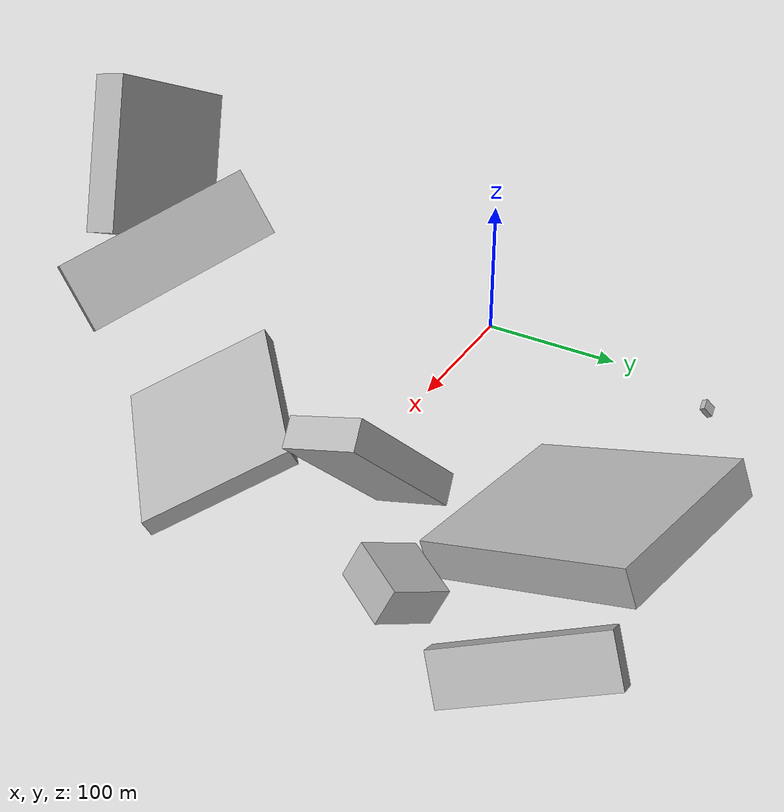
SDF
<sdf version="1.6">
 <world name="default">
  <scene>
   <sky><clouds><speed>12</speed></clouds></sky>
   <ambient>0.4 0.4 0.4 1</ambient>
   <background>0.7 0.7 0.7 1</background>
   <shadows>1</shadows>
  </scene>
  <gravity>0 0 -9.8066</gravity>
  <magnetic_field>6e-06 2.3e-05 -4.2e-05</magnetic_field>
  <physics default="0" name="default_physics" type="ode">
   <ode>
    <solver>
     <type>quick</type>
     <iters>10</iters>
     <sor>1.0</sor>
     <use_dynamic_moi_rescaling>0</use_dynamic_moi_rescaling>
    </solver>
    <constraints>
     <cfm>0</cfm>
     <erp>0.2</erp>
     <contact_max_correcting_vel>100</contact_max_correcting_vel>
     <contact_surface_layer>0.001</contact_surface_layer>
    </constraints>
   </ode>
   <max_step_size>0.004</max_step_size>
   <real_time_factor>1</real_time_factor>
   <real_time_update_rate>250</real_time_update_rate>
  </physics>
  <light name="sun" type="directional">
   <pose>0 0 10 0 0 0</pose>
   <diffuse>0.8 0.8 0.8 1</diffuse>
   <specular>0.2 0.2 0.2 1</specular>
   <attenuation>
    <range>1000</range>
    <constant>0.9</constant>
    <linear>0.01</linear>
    <quadratic>0.001</quadratic>
   </attenuation>
   <direction>-0.5 0.1 -0.9</direction>
  </light>
  <model name="building_1">
   <static>0</static>
   <pose>307.0887394121239 -92.90789112015689 38.46091955518243 -0.17278648651513703 -1.1090864195902992 -0.7198513061389946</pose>
   <link name="link">
    <gravity>0</gravity>
    <pose>0 0 49.5 0 0 0</pose>
    <collision name="collision"><geometry><box><size>12 121 99</size></box></geometry></collision>
    <visual name="visual">
     <cast_shadows>0</cast_shadows>
     <geometry><box><size>12 121 99</size></box></geometry>
     <material>
      <script>
       <uri>model://HANNAS_wall/materials/scripts</uri>
       <uri>model://HANNAS_wall/materials/textures</uri>
       <name>vrc/HANNAS_wall</name>
      </script>
     </material>
    </visual>
   </link>
  </model>
  <model name="building_2">
   <static>0</static>
   <pose>345.55512464683557 121.42695621760659 127.4727559472598 -0.415572883404514 -0.6667721000824675 -2.9171289070438142</pose>
   <link name="link">
    <gravity>0</gravity>
    <pose>0 0 42.0 0 0 0</pose>
    <collision name="collision"><geometry><box><size>17 44 84</size></box></geometry></collision>
    <visual name="visual">
     <cast_shadows>0</cast_shadows>
     <geometry><box><size>17 44 84</size></box></geometry>
     <material>
      <script>
       <uri>model://HANNAS_wall/materials/scripts</uri>
       <uri>model://HANNAS_wall/materials/textures</uri>
       <name>vrc/HANNAS_wall</name>
      </script>
     </material>
    </visual>
   </link>
  </model>
  <model name="building_3">
   <static>0</static>
   <pose>221.80159101425306 165.71560828996144 51.087339528584394 3.1404588150217183 -0.3774386534399989 1.3906096923755462</pose>
   <link name="link">
    <gravity>0</gravity>
    <pose>0 0 12.5 0 0 0</pose>
    <collision name="collision"><geometry><box><size>150 127 25</size></box></geometry></collision>
    <visual name="visual">
     <cast_shadows>0</cast_shadows>
     <geometry><box><size>150 127 25</size></box></geometry>
     <material>
      <script>
       <uri>model://HANNAS_wall/materials/scripts</uri>
       <uri>model://HANNAS_wall/materials/textures</uri>
       <name>vrc/HANNAS_wall</name>
      </script>
     </material>
    </visual>
   </link>
  </model>
  <model name="building_4">
   <static>0</static>
   <pose>58.860300481461096 187.615456356296 24.809881657060078 0.9311207596241351 -0.3162225196769521 -3.0055810395846083</pose>
   <link name="link">
    <gravity>0</gravity>
    <pose>0 0 2.0 0 0 0</pose>
    <collision name="collision"><geometry><box><size>8 9 4</size></box></geometry></collision>
    <visual name="visual">
     <cast_shadows>0</cast_shadows>
     <geometry><box><size>8 9 4</size></box></geometry>
     <material>
      <script>
       <uri>model://HANNAS_wall/materials/scripts</uri>
       <uri>model://HANNAS_wall/materials/textures</uri>
       <name>vrc/HANNAS_wall</name>
      </script>
     </material>
    </visual>
   </link>
  </model>
  <model name="building_5">
   <static>0</static>
   <pose>355.08752267077375 189.5596365969928 62.08516144228548 2.751178103934073 0.47323309771655675 -3.038318375155155</pose>
   <link name="link">
    <gravity>0</gravity>
    <pose>0 0 16.0 0 0 0</pose>
    <collision name="collision"><geometry><box><size>14 103 32</size></box></geometry></collision>
    <visual name="visual">
     <cast_shadows>0</cast_shadows>
     <geometry><box><size>14 103 32</size></box></geometry>
     <material>
      <script>
       <uri>model://HANNAS_wall/materials/scripts</uri>
       <uri>model://HANNAS_wall/materials/textures</uri>
       <name>vrc/HANNAS_wall</name>
      </script>
     </material>
    </visual>
   </link>
  </model>
  <model name="building_6">
   <static>0</static>
   <pose>321.8158096881894 114.84121911603677 41.23189323887782 1.1278008151010008 0.15228248810991327 1.0056011837043037</pose>
   <link name="link">
    <gravity>0</gravity>
    <pose>0 0 20.0 0 0 0</pose>
    <collision name="collision"><geometry><box><size>39 24 40</size></box></geometry></collision>
    <visual name="visual">
     <cast_shadows>0</cast_shadows>
     <geometry><box><size>39 24 40</size></box></geometry>
     <material>
      <script>
       <uri>model://HANNAS_wall/materials/scripts</uri>
       <uri>model://HANNAS_wall/materials/textures</uri>
       <name>vrc/HANNAS_wall</name>
      </script>
     </material>
    </visual>
   </link>
  </model>
  <model name="building_7">
   <static>0</static>
   <pose>247.53693327837215 -99.36671740627776 8.381229631016252 1.5904130978373863 1.0994429183652368 -0.7490345515809416</pose>
   <link name="link">
    <gravity>0</gravity>
    <pose>0 0 12.0 0 0 0</pose>
    <collision name="collision"><geometry><box><size>4 10 24</size></box></geometry></collision>
    <visual name="visual">
     <cast_shadows>0</cast_shadows>
     <geometry><box><size>4 10 24</size></box></geometry>
     <material>
      <script>
       <uri>model://HANNAS_wall/materials/scripts</uri>
       <uri>model://HANNAS_wall/materials/textures</uri>
       <name>vrc/HANNAS_wall</name>
      </script>
     </material>
    </visual>
   </link>
  </model>
  <model name="building_8">
   <static>0</static>
   <pose>24.51935061520976 -239.14899234989238 83.86066422717234 -0.4398046720725992 -1.0346468687773298 -2.761742594411407</pose>
   <link name="link">
    <gravity>0</gravity>
    <pose>0 0 57.5 0 0 0</pose>
    <collision name="collision"><geometry><box><size>114 25 115</size></box></geometry></collision>
    <visual name="visual">
     <cast_shadows>0</cast_shadows>
     <geometry><box><size>114 25 115</size></box></geometry>
     <material>
      <script>
       <uri>model://HANNAS_wall/materials/scripts</uri>
       <uri>model://HANNAS_wall/materials/textures</uri>
       <name>vrc/HANNAS_wall</name>
      </script>
     </material>
    </visual>
   </link>
  </model>
  <model name="building_9">
   <static>0</static>
   <pose>198.71755702295326 -228.24594987418203 60.10816801277741 -1.2806816244609707 -0.597234344684801 0.9223192903223041</pose>
   <link name="link">
    <gravity>0</gravity>
    <pose>0 0 75.0 0 0 0</pose>
    <collision name="collision"><geometry><box><size>7 52 150</size></box></geometry></collision>
    <visual name="visual">
     <cast_shadows>0</cast_shadows>
     <geometry><box><size>7 52 150</size></box></geometry>
     <material>
      <script>
       <uri>model://HANNAS_wall/materials/scripts</uri>
       <uri>model://HANNAS_wall/materials/textures</uri>
       <name>vrc/HANNAS_wall</name>
      </script>
     </material>
    </visual>
   </link>
  </model>
 </world>
</sdf>
